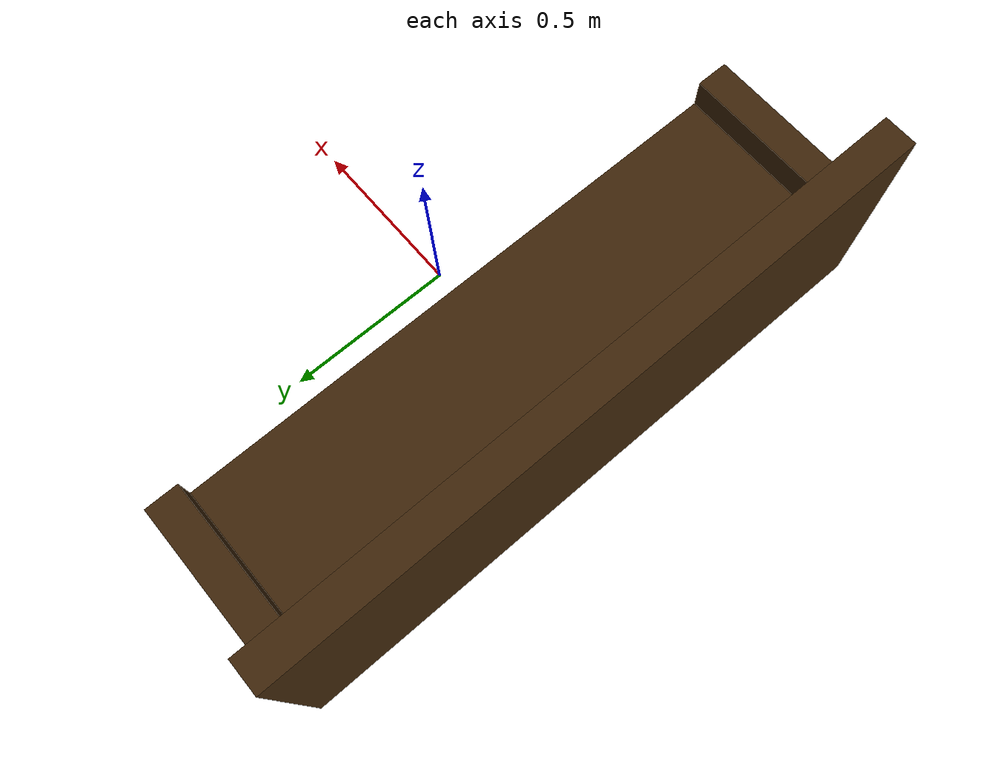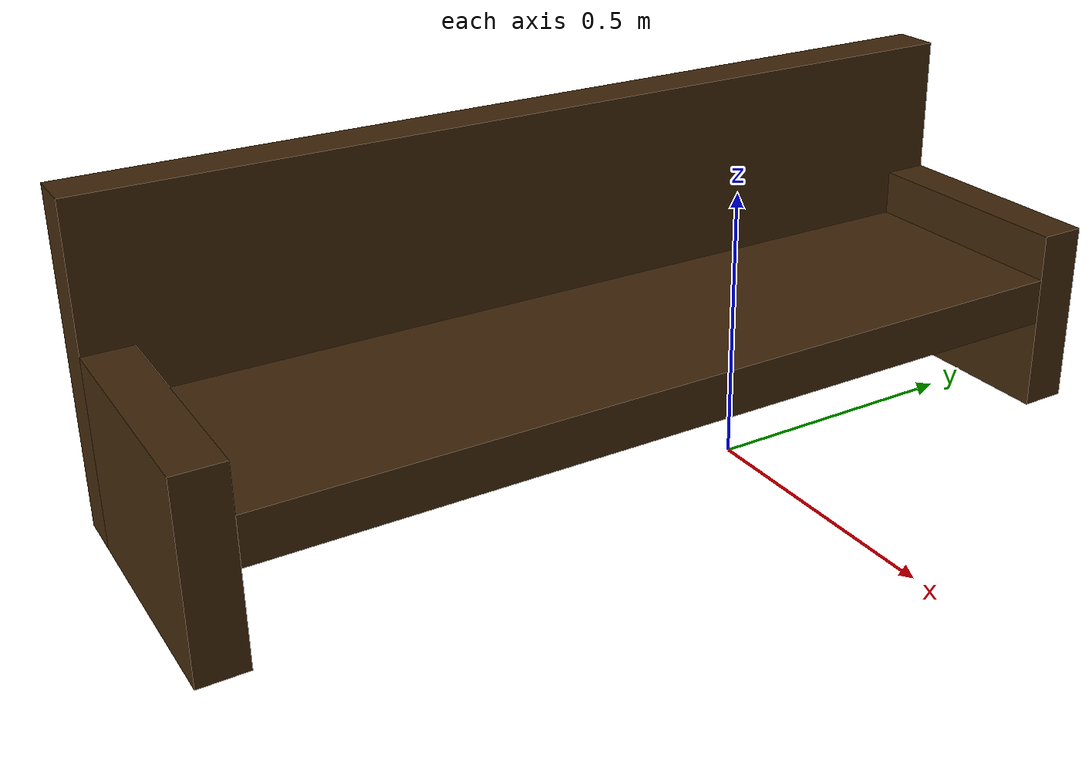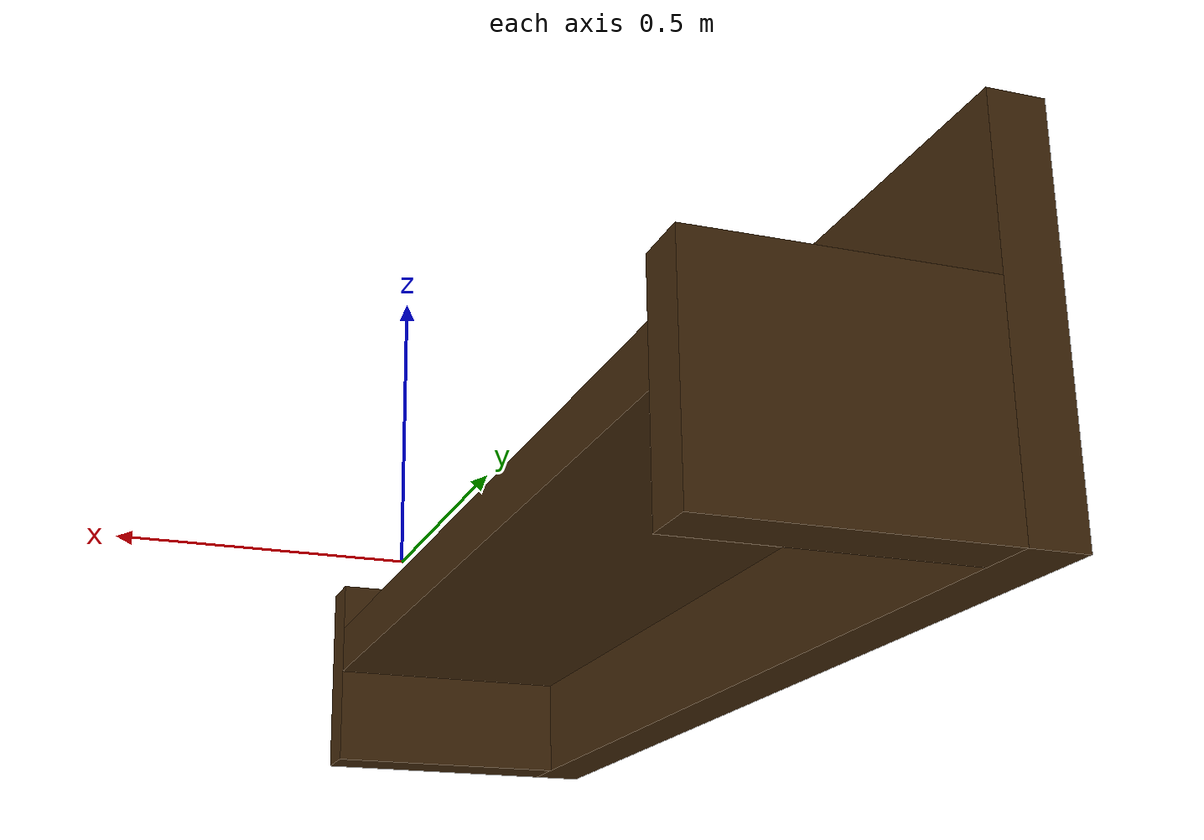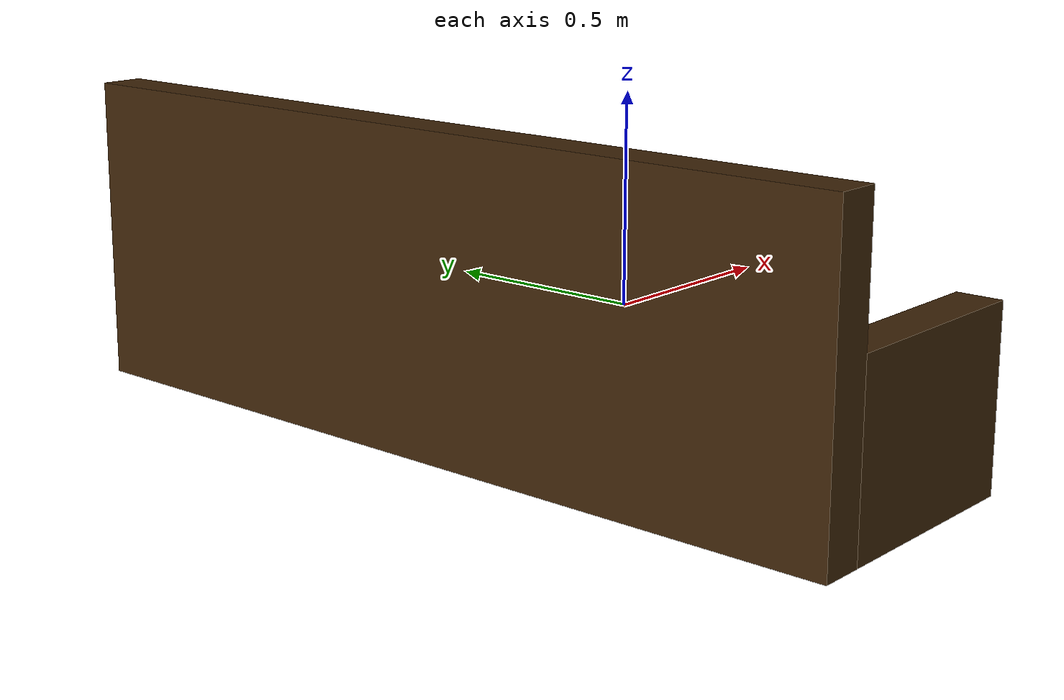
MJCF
<mujoco model="bench">
  <worldbody>
    <body name="bench" pos="-0.35 0 -0.2" quat="1 0 0 0">
      <geom name="seat" type="box" pos="0 0 0.25" size=".25 .9 .05" mass="1." material="seat"/>
      <geom name="back" type="box" pos="-0.3 0 0.35" size=".05 1. .35" mass="1." quat="1 0 0 0" material="wood"/>
      <body name="left_arm" pos="0 0.95 0.2" quat="1 0 0 0">
        <geom name="left_arm" type="box" pos="0 0 0" size=".25 0.05 .2" mass="1." quat="1 0 0 0" material="wood"/>
      </body>
      <body name="right_arm" pos="0 -0.95 0.2" quat="1 0 0 0">
        <geom name="right_arm" type="box" pos="0 0 0" size=".25 0.05 .2" mass="1." quat="1 0 0 0" material="wood"/>
      </body>
    </body>
  </worldbody>

  <asset>
    <material name="seat" rgba="0.25 0.15 0.04 1"/>
    <material name="wood" rgba="0.25 0.15 0.04 1"/>
  </asset>

    <keyframe>

    <key name="home"
      qpos="-0.27
  -0.027
   0.62
   1
   0.031
  -0.05
   0.012
  -0.16
  -0.16
  -0.077
   0.14
  -0.079
  -2.1
  -2.6
  -0.21
  -0.047
   0.18
  -0.14
  -2.1
  -2.6
  -0.32
  -0.27
   0.85
  -1.1
  -0.78
   0.81
  -1.1
  -1" />
  </keyframe>
</mujoco>
